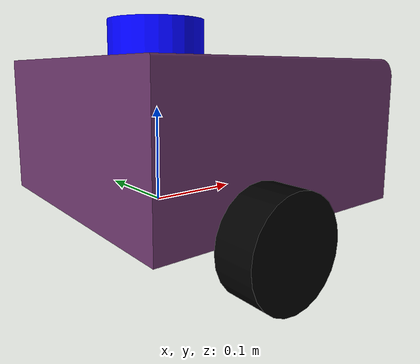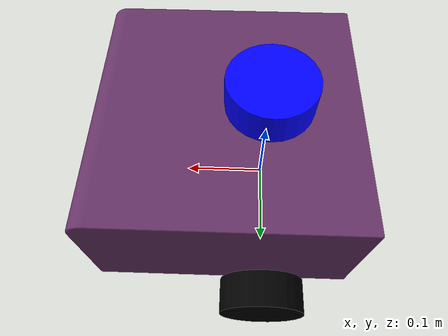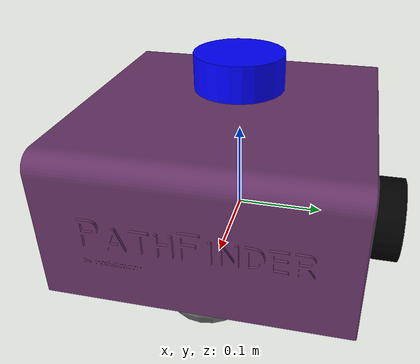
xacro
<?xml version="1.0"?>
<robot name="pathfinder" xmlns:xacro="http://www.ros.org/wiki/xacro" >

    <xacro:include filename="robot_core.xacro" />
    <xacro:include filename="gazebo_control.xacro" />
    <xacro:include filename="gazebo_lidar.xacro" />

</robot>

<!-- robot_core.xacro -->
<robot xmlns:xacro="http://www.ros.org/wiki/xacro" >
    <!--includes-->
    <xacro:include filename="inertial_macros.xacro"/>
    <xacro:include filename="materials.xacro"/>

    <!-- BASE LINK -->
    <link name="base_link">

    </link>

     <!-- BASE FOOTPRINT LINK -->
    <joint name="base_footprint_joint" type="fixed">
        <parent link="base_link"/>
        <child link="base_footprint"/>
        <origin xyz="0 0 -0.05" rpy="0 0 0"/>
    </joint>

    <link name="base_footprint">

    </link>

    <!-- CHASSIS LINK -->
    <joint name="chassis_joint" type="fixed">
        <parent link="base_link"/>
        <child link="chassis"/>
        <origin xyz="-0.1 0 0"/>
    </joint>

    <link name="chassis">
        <visual>
            <origin xyz="0.15 0 0" rpy="0 0 ${pi/2}"/>
            <geometry>
                <mesh filename="file://$(find pathfinder)/description/meshes/pathfinder_chassis.stl" scale="0.001 0.001 0.001"/> <!-- scale is in meters -->
            </geometry>
            <material name="fontys_purple"/>
        </visual>
        <collision>
            <origin xyz="0.15 0 0.075"/>
            <geometry>
                <box size="0.3 0.3 0.15"/>
            </geometry>
        </collision>
        <xacro:inertial_box mass="0.5" x="0.3" y="0.3" z="0.15">
            <origin xyz="0.15 0 0.075" rpy="0 0 0"/>
        </xacro:inertial_box>
    </link>

    <gazebo reference="chassis">
        <material>Gazebo/Purple</material>
    </gazebo>

    <!-- LEFT WHEEL LINK -->
    <joint name="left_wheel_joint" type="continuous">
        <parent link="base_link"/>
        <child link="left_wheel"/>
        <origin xyz="0 0.175 0" rpy="-${pi/2} 0 0" />
        <axis xyz="0 0 1"/>
    </joint>

    <link name="left_wheel">
        <visual>
            <geometry>
                <cylinder radius="0.05" length="0.04"/>
            </geometry>
            <material name="black"/>
        </visual>
        <collision>
            <geometry>
                <cylinder radius="0.05" length="0.04"/>
            </geometry>
        </collision>
        <xacro:inertial_cylinder mass="0.1" length="0.04" radius="0.05">
            <origin xyz="0 0 0" rpy="0 0 0"/>
        </xacro:inertial_cylinder>
    </link>

    <gazebo reference="left_wheel">
        <material>Gazebo/Black</material>
    </gazebo>

    <!-- RIGHT WHEEL LINK -->
    <joint name="right_wheel_joint" type="continuous">
        <parent link="base_link"/>
        <child link="right_wheel"/>
        <origin xyz="0 -0.175 0" rpy="${pi/2} 0 0" />
        <axis xyz="0 0 -1"/>
    </joint>

    <link name="right_wheel">
        <visual>
            <geometry>
                <cylinder radius="0.05" length="0.04"/>
            </geometry>
            <material name="black"/>
        </visual>
        <collision>
            <geometry>
                <cylinder radius="0.05" length="0.04"/>
            </geometry>
        </collision>
        <xacro:inertial_cylinder mass="0.1" length="0.04" radius="0.05">
            <origin xyz="0 0 0" rpy="0 0 0"/>
        </xacro:inertial_cylinder>
    </link>

    <gazebo reference="right_wheel">
        <material>Gazebo/Black</material>
    </gazebo>

    <!-- CASTER WHEEL LINK -->
    <joint name="caster_wheel_joint" type="fixed">
        <parent link="chassis"/>
        <child link="caster_wheel"/>
        <origin xyz="0.24 0 0"/>
    </joint>

    <link name="caster_wheel">
        <visual>
            <geometry>
                <sphere radius="0.05"/>
            </geometry>
            <material name="grey"/>
        </visual>
        <collision>
            <geometry>
                <sphere radius="0.05"/>
            </geometry>
        </collision>
        <xacro:inertial_sphere mass="0.1" radius="0.05">
            <origin xyz="0 0 0" rpy="0 0 0"/>
        </xacro:inertial_sphere>
    </link>

    <gazebo reference="caster_wheel">
        <material>Gazebo/Grey</material>
        <mu1 value="0.001"/> <!-- friction -->
        <mu2 value="0.001"/>
    </gazebo>

</robot>

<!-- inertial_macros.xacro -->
<robot name="pathfinder" xmlns:xacro="http://www.ros.org/wiki/xacro" >

    <!-- Standard inertial calculations https://en.wikipedia.org/wiki/List_of_moments_of_inertia -->

    <xacro:macro name="inertial_sphere" params="mass radius *origin">
        <inertial>
            <xacro:insert_block name="origin"/>
            <mass value="${mass}" />
            <inertia ixx="${(2/5) * mass * (radius*radius)}" ixy="0.0" ixz="0.0"
                    iyy="${(2/5) * mass * (radius*radius)}" iyz="0.0"
                    izz="${(2/5) * mass * (radius*radius)}" />
        </inertial>
    </xacro:macro>

    <xacro:macro name="inertial_box" params="mass x y z *origin">
        <inertial>
            <xacro:insert_block name="origin"/>
            <mass value="${mass}" />
            <inertia ixx="${(1/12) * mass * (y*y+z*z)}" ixy="0.0" ixz="0.0"
                    iyy="${(1/12) * mass * (x*x+z*z)}" iyz="0.0"
                    izz="${(1/12) * mass * (x*x+y*y)}" />
        </inertial>
    </xacro:macro>

    <xacro:macro name="inertial_cylinder" params="mass length radius *origin">
        <inertial>
            <xacro:insert_block name="origin"/>
            <mass value="${mass}" />
            <inertia ixx="${(1/12) * mass * (3*radius*radius + length*length)}" ixy="0.0" ixz="0.0"
                    iyy="${(1/12) * mass * (3*radius*radius + length*length)}" iyz="0.0"
                    izz="${(1/2) * mass * (radius*radius)}" />
        </inertial>
    </xacro:macro>

</robot>

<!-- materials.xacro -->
<robot xmlns:xacro="http://www.ros.org/wiki/xacro" >

    <!--materials-->
    <material name="white">
        <color rgba="1 1 1 1" />
    </material>

    <material name="black">
        <color rgba="0 0 0 1"/>
    </material>

    <material name="red">
        <color rgba="1 0 0 1"/>
    </material>

    <material name="green">
        <color rgba="0 1 0 1"/>
    </material>

    <material name="blue">
        <color rgba="0 0 1 1"/>
    </material>

    <material name="grey">
        <color rgba="${128/255} ${128/255} ${128/255} 1"/>
    </material>

    <material name="fontys_purple">
        <color rgba="${102/255} ${51/255} ${102/255} 1"/>
    </material>

</robot>

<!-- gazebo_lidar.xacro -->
<robot xmlns:xacro="http://www.ros.org/wiki/xacro" >

    <joint name="lidar_joint" type="fixed">
        <parent link="chassis"/>
        <child link="laser_frame"/>
        <origin xyz="0.1 0 0.17" rpy="0 0 0"/>
    </joint>

    <link name="laser_frame">
        <visual>
            <geometry>
                <cylinder radius="0.05" length="0.04"/>
            </geometry>
            <material name="blue"/>
        </visual>
        <collision>
            <geometry>
                <cylinder radius="0.05" length="0.04"/>
            </geometry>
        </collision>
        <xacro:inertial_cylinder mass="0.1" length="0.04" radius="0.05">
            <origin xyz="0 0 0" rpy="0 0 0"/>
        </xacro:inertial_cylinder>
    </link>

    <gazebo reference="laser_frame">
        <material>Gazebo/Blue</material>

        <sensor name="laser" type="ray">
            <pose> 0 0 0 0 0 0 </pose>
            <visualize>false</visualize>
            <update_rate>20</update_rate>
            <ray>
                <scan>
                    <horizontal>
                        <samples>360</samples>
                        <min_angle>-3.14</min_angle>
                        <max_angle>3.14</max_angle>
                    </horizontal>
                </scan>
                <range>
                    <min>0.3</min>
                    <max>12</max>
                </range>
            </ray>
            <plugin name="laser_controller" filename="libgazebo_ros_ray_sensor.so">
                <ros>
                    <remapping>~/out:=scan</remapping>
                </ros>
                <output_type>sensor_msgs/LaserScan</output_type>
                <frame_name>laser_frame</frame_name>
            </plugin>
        </sensor>
    </gazebo>

</robot>
